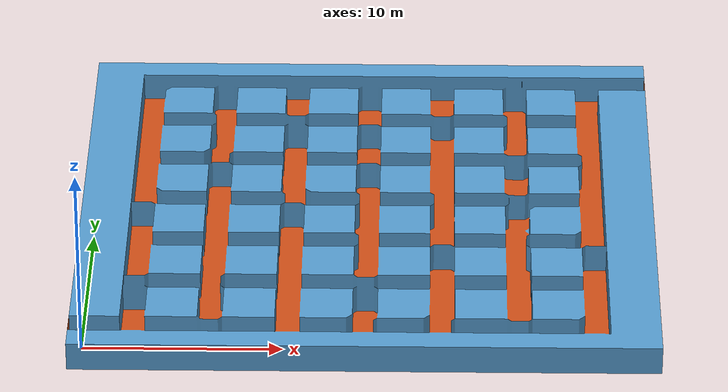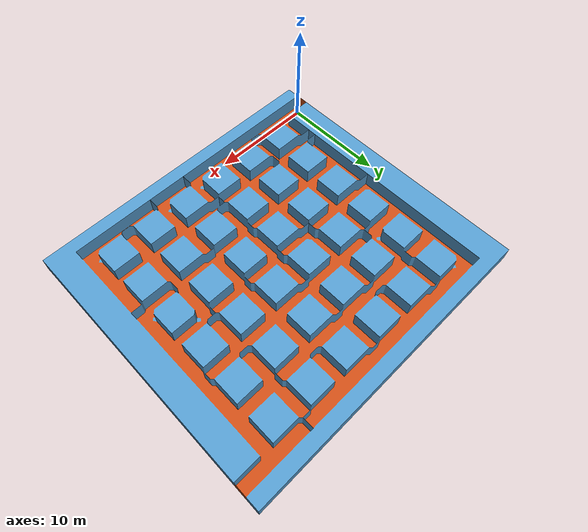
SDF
<sdf version='1.5'>
  <!-- Draw Model -->
  <model name="mazev11b">
    <static>true</static>
    <link name="mazev11b">
      <collision name="collision">
        <geometry>
          <mesh>
            <uri>model://turtlebot3_maze2/mazev11b/mazev11b.stl</uri>
          </mesh>
        </geometry>
      </collision>

      <visual name="visual">
        <geometry>
          <mesh>
            <uri>model://turtlebot3_maze2/mazev11b/mazev11b.dae</uri>
          </mesh>
        </geometry>
      </visual>
    </link>
  </model>
</sdf>
